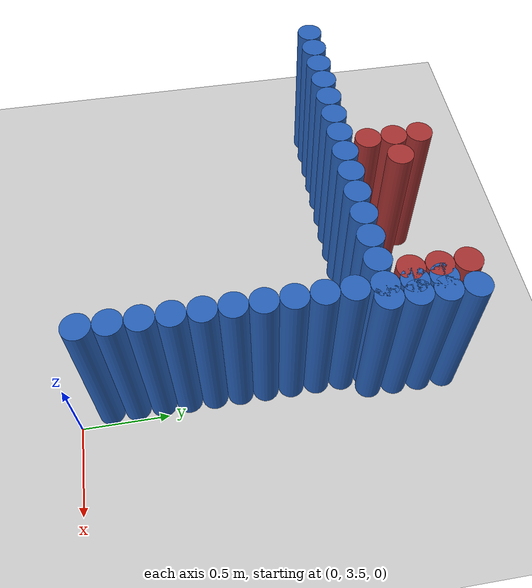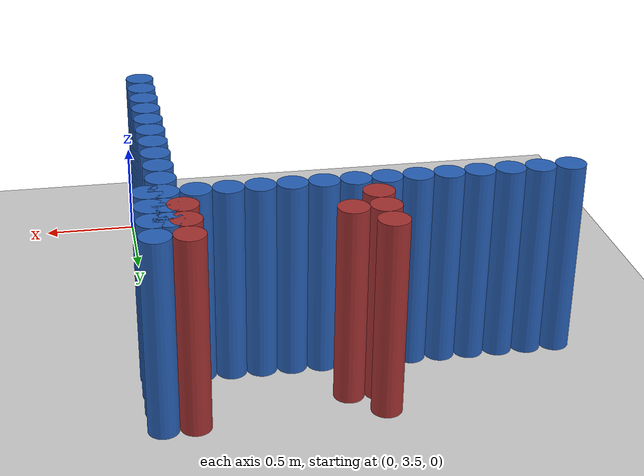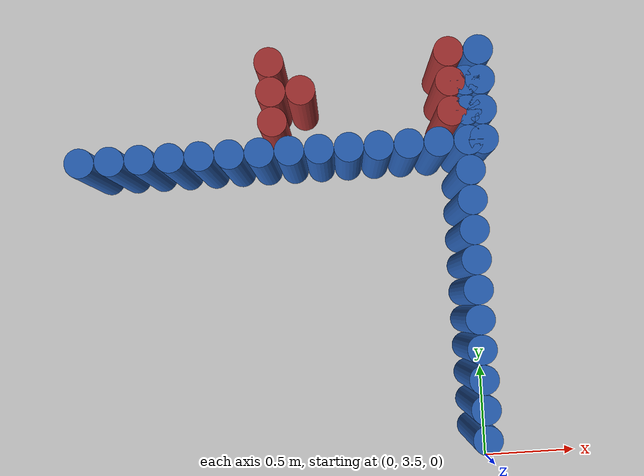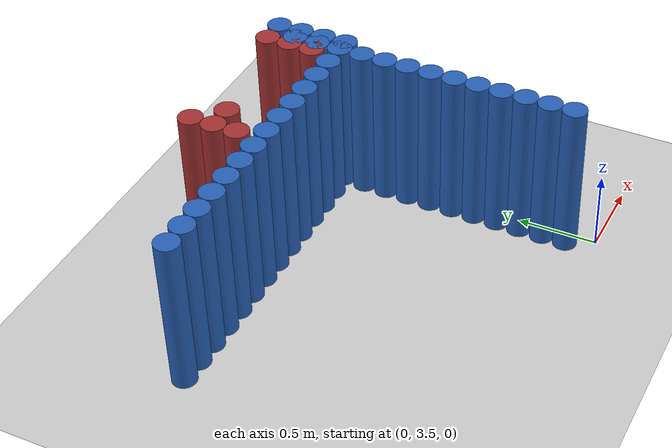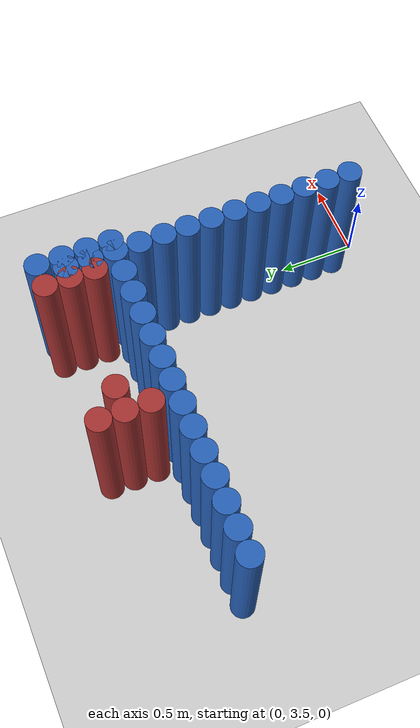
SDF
<sdf version="1.6">
 <world name="barn_world">
  <model name="ground_plane">
   <static>1</static>
   <link name="link">
    <collision name="collision">
     <geometry><plane><normal>0 0 1</normal><size>100 100</size></plane></geometry>
    </collision>
    <visual name="visual">
     <geometry><plane><normal>0 0 1</normal><size>100 100</size></plane></geometry>
     <material>
      <script><uri>file://media/materials/scripts/gazebo.material</uri><name>Gazebo/Grey</name></script>
     </material>
    </visual>
   </link>
  </model>
  <model name="unit_cylinder_76">
   <static>1</static>
   <pose>-0.0750 3.6750 0.5 0 0 0</pose>
   <link name="link">
    <collision name="collision">
     <geometry><cylinder><radius>0.075</radius><length>1</length></cylinder></geometry>
    </collision>
    <visual name="visual">
     <geometry><cylinder><radius>0.075</radius><length>1</length></cylinder></geometry>
     <material><ambient>0.152 0.379 0.72 1</ambient><diffuse>0.152 0.379 0.72 1</diffuse></material>
    </visual>
   </link>
  </model>
  <model name="unit_cylinder_78">
   <static>1</static>
   <pose>-0.0750 3.8250 0.5 0 0 0</pose>
   <link name="link">
    <collision name="collision">
     <geometry><cylinder><radius>0.075</radius><length>1</length></cylinder></geometry>
    </collision>
    <visual name="visual">
     <geometry><cylinder><radius>0.075</radius><length>1</length></cylinder></geometry>
     <material><ambient>0.152 0.379 0.72 1</ambient><diffuse>0.152 0.379 0.72 1</diffuse></material>
    </visual>
   </link>
  </model>
  <model name="unit_cylinder_80">
   <static>1</static>
   <pose>-0.0750 3.9750 0.5 0 0 0</pose>
   <link name="link">
    <collision name="collision">
     <geometry><cylinder><radius>0.075</radius><length>1</length></cylinder></geometry>
    </collision>
    <visual name="visual">
     <geometry><cylinder><radius>0.075</radius><length>1</length></cylinder></geometry>
     <material><ambient>0.152 0.379 0.72 1</ambient><diffuse>0.152 0.379 0.72 1</diffuse></material>
    </visual>
   </link>
  </model>
  <model name="unit_cylinder_82">
   <static>1</static>
   <pose>-0.0750 4.1250 0.5 0 0 0</pose>
   <link name="link">
    <collision name="collision">
     <geometry><cylinder><radius>0.075</radius><length>1</length></cylinder></geometry>
    </collision>
    <visual name="visual">
     <geometry><cylinder><radius>0.075</radius><length>1</length></cylinder></geometry>
     <material><ambient>0.152 0.379 0.72 1</ambient><diffuse>0.152 0.379 0.72 1</diffuse></material>
    </visual>
   </link>
  </model>
  <model name="unit_cylinder_84">
   <static>1</static>
   <pose>-0.0750 4.2750 0.5 0 0 0</pose>
   <link name="link">
    <collision name="collision">
     <geometry><cylinder><radius>0.075</radius><length>1</length></cylinder></geometry>
    </collision>
    <visual name="visual">
     <geometry><cylinder><radius>0.075</radius><length>1</length></cylinder></geometry>
     <material><ambient>0.152 0.379 0.72 1</ambient><diffuse>0.152 0.379 0.72 1</diffuse></material>
    </visual>
   </link>
  </model>
  <model name="unit_cylinder_86">
   <static>1</static>
   <pose>-0.0750 4.4250 0.5 0 0 0</pose>
   <link name="link">
    <collision name="collision">
     <geometry><cylinder><radius>0.075</radius><length>1</length></cylinder></geometry>
    </collision>
    <visual name="visual">
     <geometry><cylinder><radius>0.075</radius><length>1</length></cylinder></geometry>
     <material><ambient>0.152 0.379 0.72 1</ambient><diffuse>0.152 0.379 0.72 1</diffuse></material>
    </visual>
   </link>
  </model>
  <model name="unit_cylinder_88">
   <static>1</static>
   <pose>-0.0750 4.5750 0.5 0 0 0</pose>
   <link name="link">
    <collision name="collision">
     <geometry><cylinder><radius>0.075</radius><length>1</length></cylinder></geometry>
    </collision>
    <visual name="visual">
     <geometry><cylinder><radius>0.075</radius><length>1</length></cylinder></geometry>
     <material><ambient>0.152 0.379 0.72 1</ambient><diffuse>0.152 0.379 0.72 1</diffuse></material>
    </visual>
   </link>
  </model>
  <model name="unit_cylinder_90">
   <static>1</static>
   <pose>-0.0750 4.7250 0.5 0 0 0</pose>
   <link name="link">
    <collision name="collision">
     <geometry><cylinder><radius>0.075</radius><length>1</length></cylinder></geometry>
    </collision>
    <visual name="visual">
     <geometry><cylinder><radius>0.075</radius><length>1</length></cylinder></geometry>
     <material><ambient>0.152 0.379 0.72 1</ambient><diffuse>0.152 0.379 0.72 1</diffuse></material>
    </visual>
   </link>
  </model>
  <model name="unit_cylinder_92">
   <static>1</static>
   <pose>-0.0750 4.8750 0.5 0 0 0</pose>
   <link name="link">
    <collision name="collision">
     <geometry><cylinder><radius>0.075</radius><length>1</length></cylinder></geometry>
    </collision>
    <visual name="visual">
     <geometry><cylinder><radius>0.075</radius><length>1</length></cylinder></geometry>
     <material><ambient>0.152 0.379 0.72 1</ambient><diffuse>0.152 0.379 0.72 1</diffuse></material>
    </visual>
   </link>
  </model>
  <model name="unit_cylinder_94">
   <static>1</static>
   <pose>-0.0750 5.0250 0.5 0 0 0</pose>
   <link name="link">
    <collision name="collision">
     <geometry><cylinder><radius>0.075</radius><length>1</length></cylinder></geometry>
    </collision>
    <visual name="visual">
     <geometry><cylinder><radius>0.075</radius><length>1</length></cylinder></geometry>
     <material><ambient>0.152 0.379 0.72 1</ambient><diffuse>0.152 0.379 0.72 1</diffuse></material>
    </visual>
   </link>
  </model>
  <model name="unit_cylinder_96">
   <static>1</static>
   <pose>-0.0750 5.1750 0.5 0 0 0</pose>
   <link name="link">
    <collision name="collision">
     <geometry><cylinder><radius>0.075</radius><length>1</length></cylinder></geometry>
    </collision>
    <visual name="visual">
     <geometry><cylinder><radius>0.075</radius><length>1</length></cylinder></geometry>
     <material><ambient>0.152 0.379 0.72 1</ambient><diffuse>0.152 0.379 0.72 1</diffuse></material>
    </visual>
   </link>
  </model>
  <model name="unit_cylinder_97">
   <static>1</static>
   <pose>-0.2250 5.1750 0.5 0 0 0</pose>
   <link name="link">
    <collision name="collision">
     <geometry><cylinder><radius>0.075</radius><length>1</length></cylinder></geometry>
    </collision>
    <visual name="visual">
     <geometry><cylinder><radius>0.075</radius><length>1</length></cylinder></geometry>
     <material><ambient>0.152 0.379 0.72 1</ambient><diffuse>0.152 0.379 0.72 1</diffuse></material>
    </visual>
   </link>
  </model>
  <model name="unit_cylinder_98">
   <static>1</static>
   <pose>-0.3750 5.1750 0.5 0 0 0</pose>
   <link name="link">
    <collision name="collision">
     <geometry><cylinder><radius>0.075</radius><length>1</length></cylinder></geometry>
    </collision>
    <visual name="visual">
     <geometry><cylinder><radius>0.075</radius><length>1</length></cylinder></geometry>
     <material><ambient>0.152 0.379 0.72 1</ambient><diffuse>0.152 0.379 0.72 1</diffuse></material>
    </visual>
   </link>
  </model>
  <model name="unit_cylinder_99">
   <static>1</static>
   <pose>-0.5250 5.1750 0.5 0 0 0</pose>
   <link name="link">
    <collision name="collision">
     <geometry><cylinder><radius>0.075</radius><length>1</length></cylinder></geometry>
    </collision>
    <visual name="visual">
     <geometry><cylinder><radius>0.075</radius><length>1</length></cylinder></geometry>
     <material><ambient>0.152 0.379 0.72 1</ambient><diffuse>0.152 0.379 0.72 1</diffuse></material>
    </visual>
   </link>
  </model>
  <model name="unit_cylinder_100">
   <static>1</static>
   <pose>-0.6750 5.1750 0.5 0 0 0</pose>
   <link name="link">
    <collision name="collision">
     <geometry><cylinder><radius>0.075</radius><length>1</length></cylinder></geometry>
    </collision>
    <visual name="visual">
     <geometry><cylinder><radius>0.075</radius><length>1</length></cylinder></geometry>
     <material><ambient>0.152 0.379 0.72 1</ambient><diffuse>0.152 0.379 0.72 1</diffuse></material>
    </visual>
   </link>
  </model>
  <model name="unit_cylinder_101">
   <static>1</static>
   <pose>-0.8250 5.1750 0.5 0 0 0</pose>
   <link name="link">
    <collision name="collision">
     <geometry><cylinder><radius>0.075</radius><length>1</length></cylinder></geometry>
    </collision>
    <visual name="visual">
     <geometry><cylinder><radius>0.075</radius><length>1</length></cylinder></geometry>
     <material><ambient>0.152 0.379 0.72 1</ambient><diffuse>0.152 0.379 0.72 1</diffuse></material>
    </visual>
   </link>
  </model>
  <model name="unit_cylinder_102">
   <static>1</static>
   <pose>-0.9750 5.1750 0.5 0 0 0</pose>
   <link name="link">
    <collision name="collision">
     <geometry><cylinder><radius>0.075</radius><length>1</length></cylinder></geometry>
    </collision>
    <visual name="visual">
     <geometry><cylinder><radius>0.075</radius><length>1</length></cylinder></geometry>
     <material><ambient>0.152 0.379 0.72 1</ambient><diffuse>0.152 0.379 0.72 1</diffuse></material>
    </visual>
   </link>
  </model>
  <model name="unit_cylinder_103">
   <static>1</static>
   <pose>-1.1250 5.1750 0.5 0 0 0</pose>
   <link name="link">
    <collision name="collision">
     <geometry><cylinder><radius>0.075</radius><length>1</length></cylinder></geometry>
    </collision>
    <visual name="visual">
     <geometry><cylinder><radius>0.075</radius><length>1</length></cylinder></geometry>
     <material><ambient>0.152 0.379 0.72 1</ambient><diffuse>0.152 0.379 0.72 1</diffuse></material>
    </visual>
   </link>
  </model>
  <model name="unit_cylinder_104">
   <static>1</static>
   <pose>-1.2750 5.1750 0.5 0 0 0</pose>
   <link name="link">
    <collision name="collision">
     <geometry><cylinder><radius>0.075</radius><length>1</length></cylinder></geometry>
    </collision>
    <visual name="visual">
     <geometry><cylinder><radius>0.075</radius><length>1</length></cylinder></geometry>
     <material><ambient>0.152 0.379 0.72 1</ambient><diffuse>0.152 0.379 0.72 1</diffuse></material>
    </visual>
   </link>
  </model>
  <model name="unit_cylinder_105">
   <static>1</static>
   <pose>-1.4250 5.1750 0.5 0 0 0</pose>
   <link name="link">
    <collision name="collision">
     <geometry><cylinder><radius>0.075</radius><length>1</length></cylinder></geometry>
    </collision>
    <visual name="visual">
     <geometry><cylinder><radius>0.075</radius><length>1</length></cylinder></geometry>
     <material><ambient>0.152 0.379 0.72 1</ambient><diffuse>0.152 0.379 0.72 1</diffuse></material>
    </visual>
   </link>
  </model>
  <model name="unit_cylinder_106">
   <static>1</static>
   <pose>-1.5750 5.1750 0.5 0 0 0</pose>
   <link name="link">
    <collision name="collision">
     <geometry><cylinder><radius>0.075</radius><length>1</length></cylinder></geometry>
    </collision>
    <visual name="visual">
     <geometry><cylinder><radius>0.075</radius><length>1</length></cylinder></geometry>
     <material><ambient>0.152 0.379 0.72 1</ambient><diffuse>0.152 0.379 0.72 1</diffuse></material>
    </visual>
   </link>
  </model>
  <model name="unit_cylinder_107">
   <static>1</static>
   <pose>-1.7250 5.1750 0.5 0 0 0</pose>
   <link name="link">
    <collision name="collision">
     <geometry><cylinder><radius>0.075</radius><length>1</length></cylinder></geometry>
    </collision>
    <visual name="visual">
     <geometry><cylinder><radius>0.075</radius><length>1</length></cylinder></geometry>
     <material><ambient>0.152 0.379 0.72 1</ambient><diffuse>0.152 0.379 0.72 1</diffuse></material>
    </visual>
   </link>
  </model>
  <model name="unit_cylinder_108">
   <static>1</static>
   <pose>-1.8750 5.1750 0.5 0 0 0</pose>
   <link name="link">
    <collision name="collision">
     <geometry><cylinder><radius>0.075</radius><length>1</length></cylinder></geometry>
    </collision>
    <visual name="visual">
     <geometry><cylinder><radius>0.075</radius><length>1</length></cylinder></geometry>
     <material><ambient>0.152 0.379 0.72 1</ambient><diffuse>0.152 0.379 0.72 1</diffuse></material>
    </visual>
   </link>
  </model>
  <model name="unit_cylinder_109">
   <static>1</static>
   <pose>-2.0250 5.1750 0.5 0 0 0</pose>
   <link name="link">
    <collision name="collision">
     <geometry><cylinder><radius>0.075</radius><length>1</length></cylinder></geometry>
    </collision>
    <visual name="visual">
     <geometry><cylinder><radius>0.075</radius><length>1</length></cylinder></geometry>
     <material><ambient>0.152 0.379 0.72 1</ambient><diffuse>0.152 0.379 0.72 1</diffuse></material>
    </visual>
   </link>
  </model>
  <model name="unit_cylinder_165">
   <static>1</static>
   <pose>-1.0500 5.3250 0.5 0 0 0</pose>
   <link name="link">
    <collision name="collision">
     <geometry><cylinder><radius>0.075</radius><length>1</length></cylinder></geometry>
    </collision>
    <visual name="visual">
     <geometry><cylinder><radius>0.075</radius><length>1</length></cylinder></geometry>
     <material><ambient>0.648 0.192 0.192 1</ambient><diffuse>0.648 0.192 0.192 1</diffuse></material>
    </visual>
   </link>
  </model>
  <model name="unit_cylinder_166">
   <static>1</static>
   <pose>-1.0500 5.4750 0.5 0 0 0</pose>
   <link name="link">
    <collision name="collision">
     <geometry><cylinder><radius>0.075</radius><length>1</length></cylinder></geometry>
    </collision>
    <visual name="visual">
     <geometry><cylinder><radius>0.075</radius><length>1</length></cylinder></geometry>
     <material><ambient>0.648 0.192 0.192 1</ambient><diffuse>0.648 0.192 0.192 1</diffuse></material>
    </visual>
   </link>
  </model>
  <model name="unit_cylinder_167">
   <static>1</static>
   <pose>-1.0500 5.6250 0.5 0 0 0</pose>
   <link name="link">
    <collision name="collision">
     <geometry><cylinder><radius>0.075</radius><length>1</length></cylinder></geometry>
    </collision>
    <visual name="visual">
     <geometry><cylinder><radius>0.075</radius><length>1</length></cylinder></geometry>
     <material><ambient>0.648 0.192 0.192 1</ambient><diffuse>0.648 0.192 0.192 1</diffuse></material>
    </visual>
   </link>
  </model>
  <model name="unit_cylinder_168">
   <static>1</static>
   <pose>-0.9000 5.4750 0.5 0 0 0</pose>
   <link name="link">
    <collision name="collision">
     <geometry><cylinder><radius>0.075</radius><length>1</length></cylinder></geometry>
    </collision>
    <visual name="visual">
     <geometry><cylinder><radius>0.075</radius><length>1</length></cylinder></geometry>
     <material><ambient>0.648 0.192 0.192 1</ambient><diffuse>0.648 0.192 0.192 1</diffuse></material>
    </visual>
   </link>
  </model>
  <model name="unit_cylinder_172">
   <static>1</static>
   <pose>-0.1500 5.3250 0.5 0 0 0</pose>
   <link name="link">
    <collision name="collision">
     <geometry><cylinder><radius>0.075</radius><length>1</length></cylinder></geometry>
    </collision>
    <visual name="visual">
     <geometry><cylinder><radius>0.075</radius><length>1</length></cylinder></geometry>
     <material><ambient>0.648 0.192 0.192 1</ambient><diffuse>0.648 0.192 0.192 1</diffuse></material>
    </visual>
   </link>
  </model>
  <model name="unit_cylinder_173">
   <static>1</static>
   <pose>-0.1500 5.4750 0.5 0 0 0</pose>
   <link name="link">
    <collision name="collision">
     <geometry><cylinder><radius>0.075</radius><length>1</length></cylinder></geometry>
    </collision>
    <visual name="visual">
     <geometry><cylinder><radius>0.075</radius><length>1</length></cylinder></geometry>
     <material><ambient>0.648 0.192 0.192 1</ambient><diffuse>0.648 0.192 0.192 1</diffuse></material>
    </visual>
   </link>
  </model>
  <model name="unit_cylinder_174">
   <static>1</static>
   <pose>-0.1500 5.6250 0.5 0 0 0</pose>
   <link name="link">
    <collision name="collision">
     <geometry><cylinder><radius>0.075</radius><length>1</length></cylinder></geometry>
    </collision>
    <visual name="visual">
     <geometry><cylinder><radius>0.075</radius><length>1</length></cylinder></geometry>
     <material><ambient>0.648 0.192 0.192 1</ambient><diffuse>0.648 0.192 0.192 1</diffuse></material>
    </visual>
   </link>
  </model>
  <model name="unit_cylinder_182">
   <static>1</static>
   <pose>0.0000 5.1750 0.5 0 0 0</pose>
   <link name="link">
    <collision name="collision">
     <geometry><cylinder><radius>0.075</radius><length>1</length></cylinder></geometry>
    </collision>
    <visual name="visual">
     <geometry><cylinder><radius>0.075</radius><length>1</length></cylinder></geometry>
     <material><ambient>0.152 0.379 0.72 1</ambient><diffuse>0.152 0.379 0.72 1</diffuse></material>
    </visual>
   </link>
  </model>
  <model name="unit_cylinder_183">
   <static>1</static>
   <pose>0.0000 5.3250 0.5 0 0 0</pose>
   <link name="link">
    <collision name="collision">
     <geometry><cylinder><radius>0.075</radius><length>1</length></cylinder></geometry>
    </collision>
    <visual name="visual">
     <geometry><cylinder><radius>0.075</radius><length>1</length></cylinder></geometry>
     <material><ambient>0.152 0.379 0.72 1</ambient><diffuse>0.152 0.379 0.72 1</diffuse></material>
    </visual>
   </link>
  </model>
  <model name="unit_cylinder_184">
   <static>1</static>
   <pose>0.0000 5.4750 0.5 0 0 0</pose>
   <link name="link">
    <collision name="collision">
     <geometry><cylinder><radius>0.075</radius><length>1</length></cylinder></geometry>
    </collision>
    <visual name="visual">
     <geometry><cylinder><radius>0.075</radius><length>1</length></cylinder></geometry>
     <material><ambient>0.152 0.379 0.72 1</ambient><diffuse>0.152 0.379 0.72 1</diffuse></material>
    </visual>
   </link>
  </model>
  <model name="unit_cylinder_185">
   <static>1</static>
   <pose>0.0000 5.6250 0.5 0 0 0</pose>
   <link name="link">
    <collision name="collision">
     <geometry><cylinder><radius>0.075</radius><length>1</length></cylinder></geometry>
    </collision>
    <visual name="visual">
     <geometry><cylinder><radius>0.075</radius><length>1</length></cylinder></geometry>
     <material><ambient>0.152 0.379 0.72 1</ambient><diffuse>0.152 0.379 0.72 1</diffuse></material>
    </visual>
   </link>
  </model>
  <model name="unit_cylinder_242">
   <static>1</static>
   <pose>-0.0750 5.1750 0.5 0 0 0</pose>
   <link name="link">
    <collision name="collision">
     <geometry><cylinder><radius>0.075</radius><length>1</length></cylinder></geometry>
    </collision>
    <visual name="visual">
     <geometry><cylinder><radius>0.075</radius><length>1</length></cylinder></geometry>
     <material><ambient>0.152 0.379 0.72 1</ambient><diffuse>0.152 0.379 0.72 1</diffuse></material>
    </visual>
   </link>
  </model>
  <model name="unit_cylinder_244">
   <static>1</static>
   <pose>-0.0750 5.3250 0.5 0 0 0</pose>
   <link name="link">
    <collision name="collision">
     <geometry><cylinder><radius>0.075</radius><length>1</length></cylinder></geometry>
    </collision>
    <visual name="visual">
     <geometry><cylinder><radius>0.075</radius><length>1</length></cylinder></geometry>
     <material><ambient>0.152 0.379 0.72 1</ambient><diffuse>0.152 0.379 0.72 1</diffuse></material>
    </visual>
   </link>
  </model>
  <model name="unit_cylinder_246">
   <static>1</static>
   <pose>-0.0750 5.4750 0.5 0 0 0</pose>
   <link name="link">
    <collision name="collision">
     <geometry><cylinder><radius>0.075</radius><length>1</length></cylinder></geometry>
    </collision>
    <visual name="visual">
     <geometry><cylinder><radius>0.075</radius><length>1</length></cylinder></geometry>
     <material><ambient>0.152 0.379 0.72 1</ambient><diffuse>0.152 0.379 0.72 1</diffuse></material>
    </visual>
   </link>
  </model>
 </world>
</sdf>
